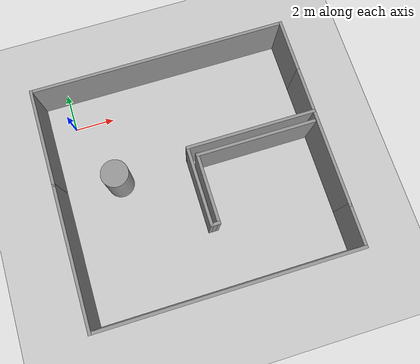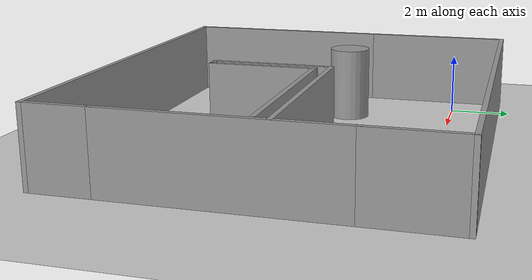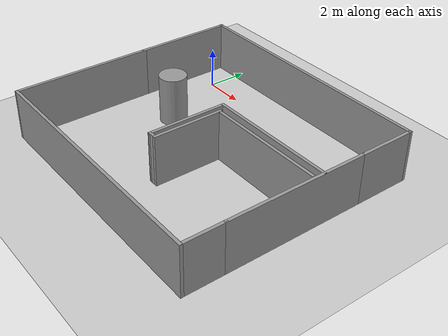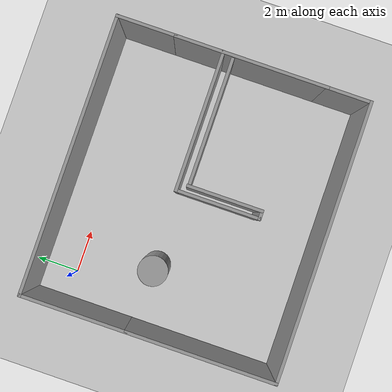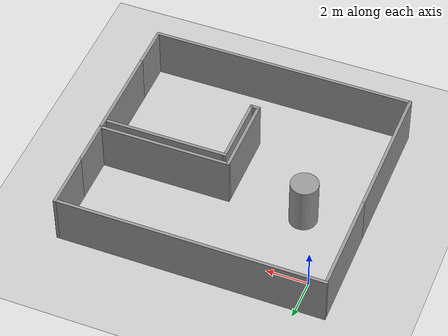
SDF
<sdf version="1.7">
 <world name="default">
  <light name="sun" type="directional">
   <pose>0 0 10 0 -0 0</pose>
   <diffuse>0.8 0.8 0.8 1</diffuse>
   <specular>0.2 0.2 0.2 1</specular>
   <attenuation>
    <range>1000</range>
    <constant>0.9</constant>
    <linear>0.01</linear>
    <quadratic>0.001</quadratic>
   </attenuation>
   <direction>-0.5 0.1 -0.9</direction>
   <spot><inner_angle>0</inner_angle><outer_angle>0</outer_angle><falloff>0</falloff></spot>
  </light>
  <model name="ground_plane">
   <static>1</static>
   <link name="link">
    <collision name="collision">
     <geometry><plane><normal>0 0 1</normal><size>100 100</size></plane></geometry>
     <surface>
      <contact><collide_bitmask>65535</collide_bitmask></contact>
      <friction><ode><mu>100</mu><mu2>50</mu2></ode></friction>
     </surface>
    </collision>
    <visual name="visual">
     <cast_shadows>0</cast_shadows>
     <geometry><plane><normal>0 0 1</normal><size>100 100</size></plane></geometry>
     <material>
      <script><uri>file://media/materials/scripts/gazebo.material</uri><name>Gazebo/Grey</name></script>
     </material>
    </visual>
   </link>
  </model>
  <gravity>0 0 -9.8</gravity>
  <magnetic_field>6e-06 2.3e-05 -4.2e-05</magnetic_field>
  <atmosphere type="adiabatic"/>
  <physics type="ode">
   <max_step_size>0.001</max_step_size>
   <real_time_factor>1</real_time_factor>
   <real_time_update_rate>1000</real_time_update_rate>
  </physics>
  <scene><ambient>0.4 0.4 0.4 1</ambient><background>0.7 0.7 0.7 1</background><shadows>1</shadows></scene>
  <spherical_coordinates>
   <surface_model>EARTH_WGS84</surface_model>
   <latitude_deg>0</latitude_deg>
   <longitude_deg>0</longitude_deg>
   <elevation>0</elevation>
   <heading_deg>0</heading_deg>
  </spherical_coordinates>
  <model name="World_V5.world">
   <pose>5.10686 -4.2715 0 0 -0 0</pose>
   <link name="Wall_23">
    <collision name="Wall_23_Collision">
     <geometry><box><size>2 0.15 2.5</size></box></geometry>
     <pose>0 0 1.25 0 -0 0</pose>
    </collision>
    <visual name="Wall_23_Visual">
     <pose>0 0 1.25 0 -0 0</pose>
     <geometry><box><size>2 0.15 2.5</size></box></geometry>
     <material>
      <script><uri>file://media/materials/scripts/gazebo.material</uri><name>Gazebo/Grey</name></script>
      <ambient>1 1 1 1</ambient>
     </material>
     <meta><layer>0</layer></meta>
    </visual>
    <pose>6.425 -4.775 0 0 -0 1.5708</pose>
   </link>
   <link name="Wall_24">
    <collision name="Wall_24_Collision">
     <geometry><box><size>7.14925 0.15 2.5</size></box></geometry>
     <pose>0 0 1.25 0 -0 0</pose>
    </collision>
    <visual name="Wall_24_Visual">
     <pose>0 0 1.25 0 -0 0</pose>
     <geometry><box><size>7.14925 0.15 2.5</size></box></geometry>
     <material>
      <script><uri>file://media/materials/scripts/gazebo.material</uri><name>Gazebo/Grey</name></script>
      <ambient>1 1 1 1</ambient>
     </material>
     <meta><layer>0</layer></meta>
    </visual>
    <pose>6.425 -0.350377 0 0 -0 1.5708</pose>
   </link>
   <link name="Wall_25">
    <collision name="Wall_25_Collision">
     <geometry><box><size>2.85075 0.15 2.5</size></box></geometry>
     <pose>0 0 1.25 0 -0 0</pose>
    </collision>
    <visual name="Wall_25_Visual">
     <pose>0 0 1.25 0 -0 0</pose>
     <geometry><box><size>2.85075 0.15 2.5</size></box></geometry>
     <material>
      <script><uri>file://media/materials/scripts/gazebo.material</uri><name>Gazebo/Grey</name></script>
      <ambient>1 1 1 1</ambient>
     </material>
     <meta><layer>0</layer></meta>
    </visual>
    <pose>6.425 4.49962 0 0 -0 1.5708</pose>
   </link>
   <link name="Wall_26">
    <collision name="Wall_26_Collision">
     <geometry><box><size>13 0.15 2.5</size></box></geometry>
     <pose>0 0 1.25 0 -0 0</pose>
    </collision>
    <visual name="Wall_26_Visual">
     <pose>0 0 1.25 0 -0 0</pose>
     <geometry><box><size>13 0.15 2.5</size></box></geometry>
     <material>
      <script><uri>file://media/materials/scripts/gazebo.material</uri><name>Gazebo/Grey</name></script>
      <ambient>1 1 1 1</ambient>
     </material>
     <meta><layer>0</layer></meta>
    </visual>
    <pose>0 5.85 0 0 -0 3.14159</pose>
   </link>
   <link name="Wall_27">
    <collision name="Wall_27_Collision">
     <geometry><box><size>5 0.15 2.5</size></box></geometry>
     <pose>0 0 1.25 0 -0 0</pose>
    </collision>
    <visual name="Wall_27_Visual">
     <pose>0 0 1.25 0 -0 0</pose>
     <geometry><box><size>5 0.15 2.5</size></box></geometry>
     <material>
      <script><uri>file://media/materials/scripts/gazebo.material</uri><name>Gazebo/Grey</name></script>
      <ambient>1 1 1 1</ambient>
     </material>
     <meta><layer>0</layer></meta>
    </visual>
    <pose>-6.425 3.425 0 0 -0 -1.5708</pose>
   </link>
   <link name="Wall_28">
    <collision name="Wall_28_Collision">
     <geometry><box><size>7 0.15 2.5</size></box></geometry>
     <pose>0 0 1.25 0 -0 0</pose>
    </collision>
    <visual name="Wall_28_Visual">
     <pose>0 0 1.25 0 -0 0</pose>
     <geometry><box><size>7 0.15 2.5</size></box></geometry>
     <material>
      <script><uri>file://media/materials/scripts/gazebo.material</uri><name>Gazebo/Grey</name></script>
      <ambient>1 1 1 1</ambient>
     </material>
     <meta><layer>0</layer></meta>
    </visual>
    <pose>-6.425 -2.425 0 0 -0 -1.5708</pose>
   </link>
   <link name="Wall_29">
    <collision name="Wall_29_Collision">
     <geometry><box><size>13 0.15 2.5</size></box></geometry>
     <pose>0 0 1.25 0 -0 0</pose>
    </collision>
    <visual name="Wall_29_Visual">
     <pose>0 0 1.25 0 -0 0</pose>
     <geometry><box><size>13 0.15 2.5</size></box></geometry>
     <material>
      <script><uri>file://media/materials/scripts/gazebo.material</uri><name>Gazebo/Grey</name></script>
      <ambient>1 1 1 1</ambient>
     </material>
     <meta><layer>0</layer></meta>
    </visual>
    <pose>0 -5.85 0 0 -0 0</pose>
   </link>
   <link name="Wall_38">
    <collision name="Wall_38_Collision">
     <geometry><box><size>6.5 0.15 2.5</size></box></geometry>
     <pose>0 0 1.25 0 -0 0</pose>
    </collision>
    <visual name="Wall_38_Visual">
     <pose>0 0 1.25 0 -0 0</pose>
     <geometry><box><size>6.5 0.15 2.5</size></box></geometry>
     <material>
      <script><uri>file://media/materials/scripts/gazebo.material</uri><name>Gazebo/Grey</name></script>
      <ambient>1 1 1 1</ambient>
     </material>
     <meta><layer>0</layer></meta>
    </visual>
    <pose>3.22886 0.946039 0 0 -0 3.14159</pose>
   </link>
   <link name="Wall_39">
    <collision name="Wall_39_Collision">
     <geometry><box><size>3.96283 0.15 2.5</size></box></geometry>
     <pose>0 0 1.25 0 -0 0</pose>
    </collision>
    <visual name="Wall_39_Visual">
     <pose>0 0 1.25 0 -0 0</pose>
     <geometry><box><size>3.96283 0.15 2.5</size></box></geometry>
     <material>
      <script><uri>file://media/materials/scripts/gazebo.material</uri><name>Gazebo/Grey</name></script>
      <ambient>1 1 1 1</ambient>
     </material>
     <meta><layer>0</layer></meta>
    </visual>
    <pose>0.053858 -0.975896 0 0 -0 -1.5708</pose>
   </link>
   <link name="Wall_40">
    <collision name="Wall_40_Collision">
     <geometry><box><size>0.5 0.15 2.5</size></box></geometry>
     <pose>0 0 1.25 0 -0 0</pose>
    </collision>
    <visual name="Wall_40_Visual">
     <pose>0 0 1.25 0 -0 0</pose>
     <geometry><box><size>0.5 0.15 2.5</size></box></geometry>
     <material>
      <script><uri>file://media/materials/scripts/gazebo.material</uri><name>Gazebo/Grey</name></script>
      <ambient>1 1 1 1</ambient>
     </material>
     <meta><layer>0</layer></meta>
    </visual>
    <pose>0.228858 -2.88231 0 0 -0 0</pose>
   </link>
   <link name="Wall_41">
    <collision name="Wall_41_Collision">
     <geometry><box><size>3.53447 0.15 2.5</size></box></geometry>
     <pose>0 0 1.25 0 -0 0</pose>
    </collision>
    <visual name="Wall_41_Visual">
     <pose>0 0 1.25 0 -0 0</pose>
     <geometry><box><size>3.53447 0.15 2.5</size></box></geometry>
     <material>
      <script><uri>file://media/materials/scripts/gazebo.material</uri><name>Gazebo/Grey</name></script>
      <ambient>1 1 1 1</ambient>
     </material>
     <meta><layer>0</layer></meta>
    </visual>
    <pose>0.403858 -1.19008 0 0 -0 1.5708</pose>
   </link>
   <link name="Wall_42">
    <collision name="Wall_42_Collision">
     <geometry><box><size>6 0.15 2.5</size></box></geometry>
     <pose>0 0 1.25 0 -0 0</pose>
    </collision>
    <visual name="Wall_42_Visual">
     <pose>0 0 1.25 0 -0 0</pose>
     <geometry><box><size>6 0.15 2.5</size></box></geometry>
     <material>
      <script><uri>file://media/materials/scripts/gazebo.material</uri><name>Gazebo/Grey</name></script>
      <ambient>1 1 1 1</ambient>
     </material>
     <meta><layer>0</layer></meta>
    </visual>
    <pose>3.32886 0.470943 0 0 -0 0</pose>
   </link>
   <static>1</static>
  </model>
  <model name="unit_cylinder">
   <pose>1.52767 -3.51323 1.21291 0 -0 3e-05</pose>
   <link name="link">
    <inertial>
     <mass>1</mass>
     <inertia><ixx>0.145833</ixx><ixy>0</ixy><ixz>0</ixz><iyy>0.145833</iyy><iyz>0</iyz><izz>0.125</izz></inertia>
    </inertial>
    <collision name="collision">
     <geometry><cylinder><radius>0.673885</radius><length>2.42584</length></cylinder></geometry>
    </collision>
    <visual name="visual">
     <geometry><cylinder><radius>0.673885</radius><length>2.42584</length></cylinder></geometry>
     <material>
      <script><name>Gazebo/Grey</name><uri>file://media/materials/scripts/gazebo.material</uri></script>
     </material>
    </visual>
   </link>
  </model>
 </world>
</sdf>
